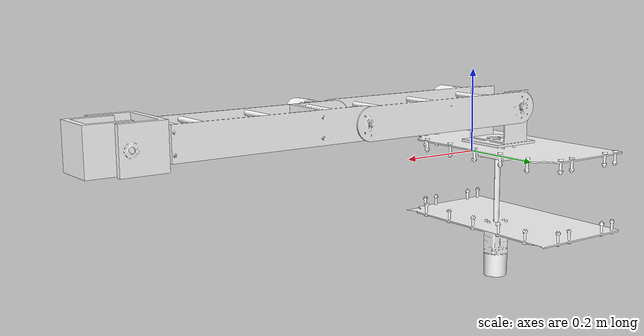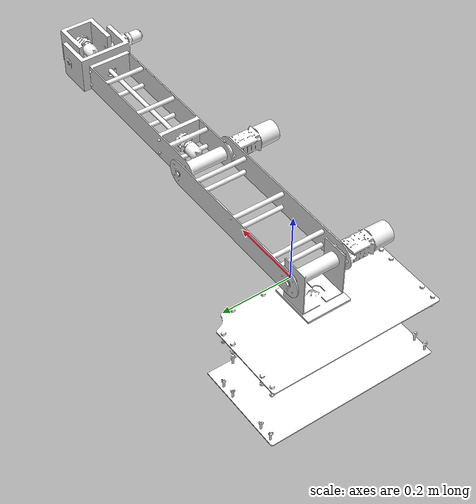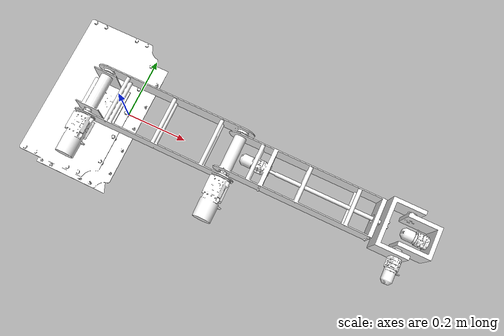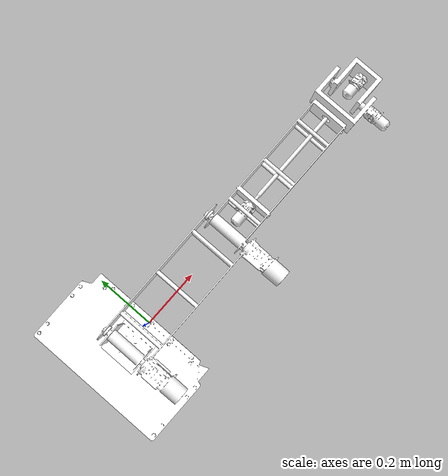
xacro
<?xml version="1.0"?>
<robot xmlns:xacro="http://www.ros.org/wiki/xacro" name="robot_arm">
	<xacro:arg name="arm_model" default="mk3"/>
	<xacro:arg name="serial_port" default="/dev/ttyACM1"/>
	<xacro:arg name="arduino_serial_port" default="/dev/ttyUSB0"/>
	<xacro:arg name="calibrate" default="False"/>
	<xacro:arg name="tf_prefix" default="" />
	<xacro:arg name="include_gripper" default="false"/>

	<xacro:include filename="hardware_macros.xacro"/>
	<xacro:include filename="$(find arm_control)/description/arm.ros2_control.xacro"/>

	<material name="white">
        <color rgba="1 1 1 1"/>
    </material>

    <material name="orange">
        <color rgba="1 0.3 0.1 1"/>
    </material>

    <material name="blue">
        <color rgba="0.2 0.2 1 1"/>
    </material>

    <material name="black">
        <color rgba="0 0 0 1"/>
    </material>

	<!--Dummy Link-->
	<link name="base_link"/>
	<joint name="dummy_joint" type="fixed">
		<origin xyz="0 0 0" rpy="0 0 0"/>
		<parent link="base_link"/>
		<child link="arm_a1"/>
	</joint>

	<!--Arm Links-->

	<!--Arm 1-->

	<xacro:arm_component
		component_number ="1"
		type = "revolute"
		parent_link = "arm_a1"
		child_link = "arm_a2"
		mass = "3.8185"
		axis = "0 0 1"
		Lxx="100.85864"
		Lxy="2.33423"
		Lxz="-0.07753"
		Lyy="40.30078"
		Lyz="-0.00376"
		Lzz="69.49319"
		file="ARM-A01"
		inertiaX = "-3.34872"
		inertiaY = "-7.71683"
		inertiaZ = "0.00031"
		effort_limit = "400000.0"
		lower_limit = "${radians(-180)}"
		upper_limit = "${radians(180)}"
		velocity_limit = "300000.0"
		joint_X = "-3.50000000"
		joint_Y = "0.51712500"
		joint_Z = "0.0"
	/>

	<!--Arm 2-->

	<xacro:arm_component
		component_number ="2"
		type = "revolute"
		parent_link = "arm_a2"
		child_link = "arm_a3"
		mass="3.6524"
		axis = "0 -1 0"
		Lxx="21.53"
		Lxy="0.0"
		Lxz="0.0"
		Lyy="10.896"
		Lyz="0.14287"
		Lzz="14.594"
		file="ARM-A02"
		inertiaX = "0"
		inertiaY = "2.7203"
		inertiaZ = "0.03799"
		effort_limit = "125000.0"
		lower_limit = "${radians(-15)}"
		upper_limit = "${radians(135)}"
		velocity_limit = "300000.0"
		joint_X = "0.0"
		joint_Y = "3.75000000"
		joint_Z = "0.0"
	/>

	<!--Arm 3-->

	<xacro:arm_component
		component_number ="3"
		type = "revolute"
		parent_link = "arm_a3"
		child_link = "arm_a4"
		mass="6.5626"
		axis = "0 1 0"
		Lxx="65.558"
		Lxy="-0.15469"
		Lxz="0.02472"
		Lyy="525.31"
		Lyz="-0.00494"
		Lzz="465.43"
		file="ARM-A03"
		inertiaX="9.0018"
		inertiaY="-0.00037"
		inertiaZ="4.4146"
		effort_limit = "800000.0"
		lower_limit = "${radians(-120)}"
		upper_limit = "${radians(120)}"
		velocity_limit = "300000.0"
		joint_X = "18.00000000"
		joint_Y = "0.0"
		joint_Z = "0.0"
	/>

	<!--Arm 4-->

	<xacro:arm_component
		component_number ="4"
		type = "continuous"
		parent_link = "arm_a4"
		child_link = "arm_a5"
		mass="5.2840"
		axis = "1 0 0"
		Lxx="17.7636"
		Lxy="-0.0006"
		Lxz="-1.1308"
		Lyy="240.1392"
		Lyz="-0.0001"
		Lzz="227.3199"
		file="ARM-A04"
		inertiaX="4.9938"
		inertiaY="0.0000"
		inertiaZ="0.0189"
		effort_limit = "300000.0"
		lower_limit = "${radians(-180)}"
		upper_limit = "${radians(180)}"
		velocity_limit = "300000.0"
		joint_X = "4.48622047"
		joint_Y = "0.0"
		joint_Z = "0.0"
	/>

	<!--Arm 5-->

	<xacro:arm_component
		component_number ="5"
		type = "revolute"
		parent_link = "arm_a5"
		child_link = "arm_a6"
		mass="2.8972"
		axis = "0 1 0"
		Lxx="19.6638"
		Lxy="-0.0018"
		Lxz="1.7653"
		Lyy="43.6205"
		Lyz="-0.0010"
		Lzz="30.6708"
		file="ARM-A05"
		inertiaX="14.8203"
		inertiaY="0.0000"
		inertiaZ="0.2634"
		effort_limit = "300000.0"
		lower_limit = "${radians(-90)}"
		upper_limit = "${radians(90)}"
		velocity_limit = "300000.0"
		joint_X = "17.25000000"
		joint_Y = "0.0"
		joint_Z = "0.0"
	/>

	<!--Arm 6-->

	<xacro:arm_component
		component_number ="6"
		type = "revolute"
		parent_link = "arm_a6"
		child_link = "arm_a7"
		mass="2.2545"
		axis = "1 0 0"
		Lxx="8.2279"
		Lxy="-0.0415"
		Lxz="-0.0881"
		Lyy="9.0021"
		Lyz="0.0008"
		Lzz="6.2503"
		file="ARM-A06"
		inertiaX="1.6113"
		inertiaY="-0.0138"
		inertiaZ="0.0240"
		effort_limit = "300000.0"
		lower_limit = "${radians(-90)}"
		upper_limit = "${radians(90)}"
		velocity_limit = "300000.0"
		joint_X = "2.98622047"
		joint_Y = "0.0"
		joint_Z = "0.0"
	/>

	<!--Arm 7-->

	<link name="arm_a7">
		<inertial>
		<mass value="0.454"/>
		<origin rpy="0 0 0" xyz="0.0 0.0 0.0"/>
		<inertia ixx="7.0307" ixy="0.0" ixz="-0.0" iyy="7.0307" iyz="-0.0" izz="7.0307"/>
		</inertial>
		<collision>
		<origin rpy="0 0 0" xyz="0.0 0.0 0.0"/>
		<geometry>
			<box size="0.01 0.01 0.01"/>
		</geometry>
		</collision>
  	</link>

	<!-- ROS2 Control -->
	<xacro:arm_ros2_control
		arm_model="$(arg arm_model)"
		plugin_name="annin_ar4_driver/ARHardwareInterface"
		serial_port="$(arg serial_port)"
		calibrate="$(arg calibrate)"
		robot_parameters_file="$(find arm_control)/config/arm_params.yaml"
		joint_offset_parameters_file="$(find arm_control)/config/joint_offsets.yaml"
		driver_parameters_file="$(find arm_control)/config/driver.yaml"
		tf_prefix="$(arg tf_prefix)"
	/>
</robot>

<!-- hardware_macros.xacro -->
<robot xmlns:xacro="http://www.ros.org/wiki/xacro"  >

    <!--ROS2_CONTROL MACROS-->

    <!--Joint Creator-->

    <xacro:macro name="joint_creator" params="name">
        <joint name="${name}">
            <command_interface name="velocity">
                <param name="min">-10</param>
                <param name="max">10</param>
            </command_interface>

            <state_interface name="velocity"/>
            <state_interface name="position"/>

        </joint>
    </xacro:macro>

    <xacro:macro name="arm_joint_creator" params="name">
            <joint name="${name}">
                <command_interface name="effort"/>

                <state_interface name="position">
                    <param name="initial_value">0.0</param>
                </state_interface>
            </joint>
    </xacro:macro>

    <!--ROBOT_CORE MACROS-->

    <!--Encoder Wheel Macro-->

    <xacro:macro name="wheel" params="name origin direction axis">

        <joint name="${name}_joint" type="continuous">
            <parent link="base_link" />
            <child link="${name}" />
            <origin xyz="${origin}" rpy="${direction}${pi/2} 0 0" />
            <axis xyz="0 0 ${axis}1" />
        </joint>

        <link name="${name}">

            <visual>
                <material name="blue"/>
                <geometry>
                    <cylinder radius="${wheel_radius}" length="${wheel_length}" />
                </geometry>
            </visual>

            <collision>
                <geometry>
                    <cylinder radius="${wheel_radius}" length="${wheel_length}" />
                </geometry>
            </collision>

            <xacro:inertial_cylinder mass="0.5" length="${wheel_length}" radius="${wheel_radius}">
                <origin xyz="0 0 0" rpy="0 0 0"/>
            </xacro:inertial_cylinder>

        </link>

        <gazebo reference="${name}">
            <material>Gazebo/Blue</material>
        </gazebo>
    </xacro:macro>

    <!--NOT Enconder Wheel Macro-->
    <xacro:macro name="dummy_wheel" params="name origin direction axis">

        <joint name="${name}_joint" type="continuous">
            <parent link="base_link" />
            <child link="${name}" />
            <origin xyz="${origin}" rpy="${direction}${pi/2} 0 0" />
            <axis xyz="0 0 ${axis}1" />
        </joint>

        <link name="${name}">

            <visual>
                <material name="orange"/>
                <geometry>
                    <cylinder radius="${wheel_radius}" length="${wheel_length}" />
                </geometry>
            </visual>

            <collision>
                <geometry>
                    <cylinder radius="${wheel_radius}" length="${wheel_length}" />
                </geometry>
            </collision>

            <xacro:inertial_cylinder mass="0.5" length="${wheel_length}" radius="${wheel_radius}">
                <origin xyz="0 0 0" rpy="0 0 0"/>
            </xacro:inertial_cylinder>

        </link>

        <gazebo reference="${name}">
            <material>Gazebo/Orange</material>
            <mu1 value="0.001"/>
            <mu2 value="0.001"/>
        </gazebo>
    </xacro:macro>

    <!--Inertial Macros-->

    <xacro:macro name="inertial_sphere" params="mass radius *origin">
        <inertial>
            <xacro:insert_block name="origin"/>
            <mass value="${mass}" />
            <inertia ixx="${(2/5) * mass * (radius*radius)}" ixy="0.0" ixz="0.0"
                    iyy="${(2/5) * mass * (radius*radius)}" iyz="0.0"
                    izz="${(2/5) * mass * (radius*radius)}" />
        </inertial>
    </xacro:macro>

    <xacro:macro name="inertial_box" params="mass x y z *origin">
        <inertial>
            <xacro:insert_block name="origin"/>
            <mass value="${mass}" />
            <inertia ixx="${(1/12) * mass * (y*y+z*z)}" ixy="0.0" ixz="0.0"
                    iyy="${(1/12) * mass * (x*x+z*z)}" iyz="0.0"
                    izz="${(1/12) * mass * (x*x+y*y)}" />
        </inertial>
    </xacro:macro>

    <xacro:macro name="inertial_cylinder" params="mass length radius *origin">
        <inertial>
            <xacro:insert_block name="origin"/>
            <mass value="${mass}" />
            <inertia ixx="${(1/12) * mass * (3*radius*radius + length*length)}" ixy="0.0" ixz="0.0"
                    iyy="${(1/12) * mass * (3*radius*radius + length*length)}" iyz="0.0"
                    izz="${(1/2) * mass * (radius*radius)}" />
        </inertial>
    </xacro:macro>

    <!--Arm Inertial Macros-->

    <xacro:property name="intom" value="0.0254"/>
	<xacro:property name="lbtokg" value="0.454"/>
	<xacro:property name="lbsqintokgsqm" value="703.07"/>

    <xacro:macro name="sw_origin" params="x y z roll:=0 pitch:=0 yaw:=0">
        <origin xyz="${x*intom} ${-z*intom} ${y*intom}" rpy="${roll} ${pitch} ${yaw}"/>
    </xacro:macro>

    <xacro:macro name="sw_visual" params="file">
        <visual>
            <origin xyz="0 0 0" rpy="${radians(90)} 0 0"/>
            <geometry>
                <mesh filename="file://$(find arm_control)/description/mesh/${file}.STL" />
            </geometry>
            <material name="white"/>
        </visual>
    </xacro:macro>

    <!-- Units: lb, in, lb*in^2 -->
    <xacro:macro name="sw_inertial" params="m X Y Z Lxx Lxy Lxz Lyy Lyz Lzz file">
        <inertial>
            <mass value="${m*lbtokg}"/>
            <xacro:sw_origin x="${X}" y="${Y}" z="${Z}"/>
            <inertia
                ixx="${Lxx*lbsqintokgsqm}" ixy="${Lxz*lbsqintokgsqm}" ixz="${-Lxy*lbsqintokgsqm}"
                iyy="${Lzz*lbsqintokgsqm}" iyz="${-Lyz*lbsqintokgsqm}"
                izz="${Lyy*lbsqintokgsqm}"/>
        </inertial>
        <collision>
            <xacro:sw_origin x="${X}" y="${Y}" z="${Z}"/>
            <geometry>
                <mesh filename="file://$(find arm_control)/description/mesh/${file}.STL" />
            </geometry>
        </collision>
    </xacro:macro>

    <!--DEFINING MY OWN MACROS CUZ WHOEVER DID THE ARM IS STUPID-->

    <xacro:macro name="sw_origin" params="x y z roll:=0 pitch:=0 yaw:=0">
        <origin xyz="${x*intom} ${-z*intom} ${y*intom}" rpy="${roll} ${pitch} ${yaw}"/>
    </xacro:macro>

    <xacro:macro name="arm_component" params=" component_number type parent_link child_link mass axis Lxx Lxy Lxz Lyy Lyz Lzz file inertiaX inertiaY inertiaZ effort_limit lower_limit upper_limit velocity_limit joint_X joint_Y joint_Z">
        <link name="arm_a${component_number}">
            <visual>
                <origin rpy="${radians(90)} 0 0" xyz="0 0 0"/>
                <geometry>
                    <mesh filename="file://$(find arm_control)/description/mesh/${file}.STL" />
                </geometry>
                <material name="white"/>
            </visual>

            <inertial>
                <mass value="${mass}"/>
                <origin xyz="${inertiaX*intom} ${-inertiaZ*intom} ${inertiaY*intom}" rpy="0 0 0"/>
                <inertia
                    ixx="${Lxx*lbsqintokgsqm}" ixy="${Lxz*lbsqintokgsqm}" ixz="${-Lxy*lbsqintokgsqm}"
                    iyy="${Lzz*lbsqintokgsqm}" iyz="${-Lyz*lbsqintokgsqm}"
                    izz="${Lyy*lbsqintokgsqm}"/>
            </inertial>
        </link>

        <joint name="arm_j${component_number}" type="${type}">
            <origin xyz="${joint_X*intom} ${-joint_Z*intom} ${joint_Y*intom}" rpy="0 0 0"/>
            <parent link="${parent_link}"/>
            <child link="${child_link}"/>
            <axis xyz="${axis}"/>
            <limit effort="${effort_limit}" lower="${lower_limit}" upper="${upper_limit}" velocity="${velocity_limit}"/>
        </joint>

    </xacro:macro>

</robot>
